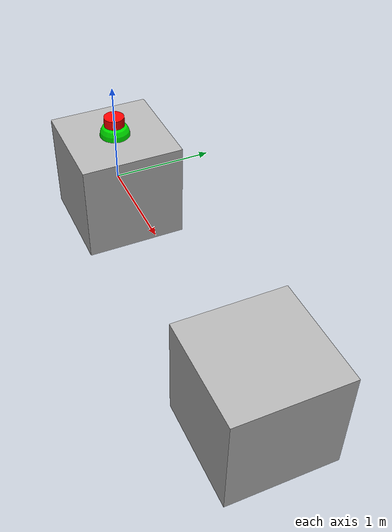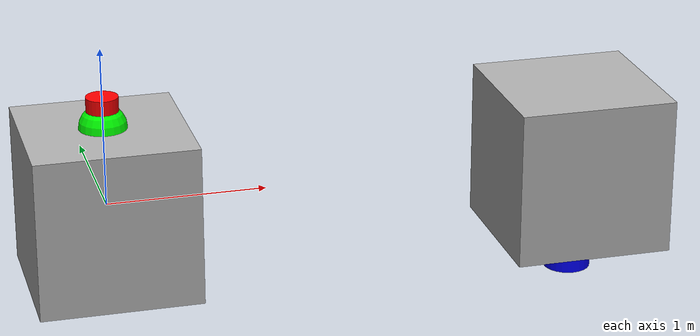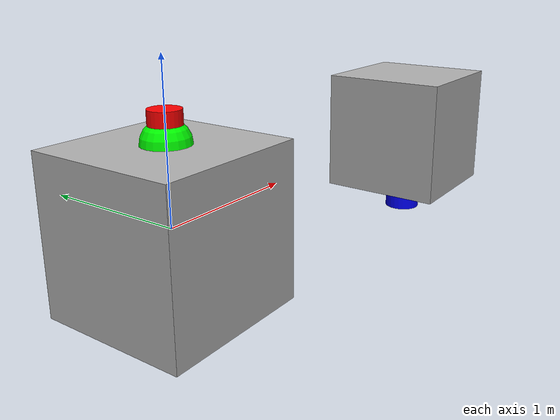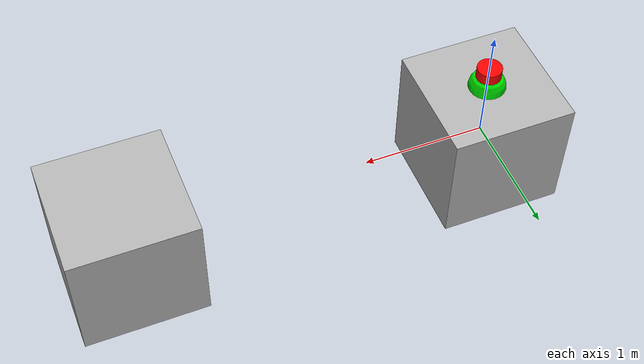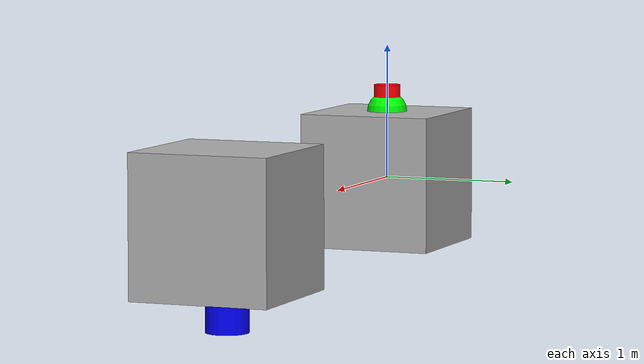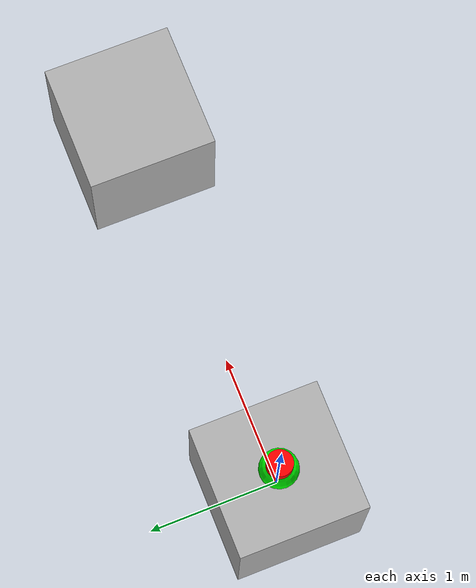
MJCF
<mujoco model="satellites">
  <compiler angle="degree"/>
  <option timestep="0.001" gravity="0 0 0"/>

  <default>
    <geom contype="1" conaffinity="1" density="1000" friction="0.5 0.005 0.0001"/>
  </default>

  <worldbody>
    <light diffuse=".5 .5 .5" pos="0 0 3" dir="0 0 -1"/>
    <camera pos="5 0 2" xyaxes="-1 0 0 0 0 1"/>

    <!-- Servicing Satellite -->
    <body name="servicer" pos="0 0 0">
      <joint name="servicer_free" type="free"/>
      <!-- Main body -->
      <geom name="servicer_body" type="box" size=".5 .5 .5" rgba="0.7 0.7 0.7 1"/>
      <!-- Docking port (protrusion) -->
      <geom name="servicer_port" type="cylinder" pos="0 0 0.5" size="0.1 0.2" rgba="1 0 0 1"/>
      <!-- Docking site (for reference) -->
      <site name="servicer_dock_site" pos="0 0 0.5" size="0.15" rgba="0 1 0 1"/>
    </body>

    <!-- Target Satellite -->
    <body name="target" pos="3 0 0">
      <joint name="target_free" type="free"/>
      <!-- Main body -->
      <geom name="target_body" type="box" size=".5 .5 .5" rgba="0.7 0.7 0.7 1"/>
      <!-- Docking cavity (receptacle) -->
      <geom name="target_cavity" type="cylinder" pos="0 0 -0.5" size="0.15 0.25" rgba="0 0 1 1"/>
      <!-- Docking site (for reference) -->
      <site name="target_dock_site" pos="0 0 -0.5" size="0.15" rgba="0 1 0 1"/>
    </body>
  </worldbody>
</mujoco>
